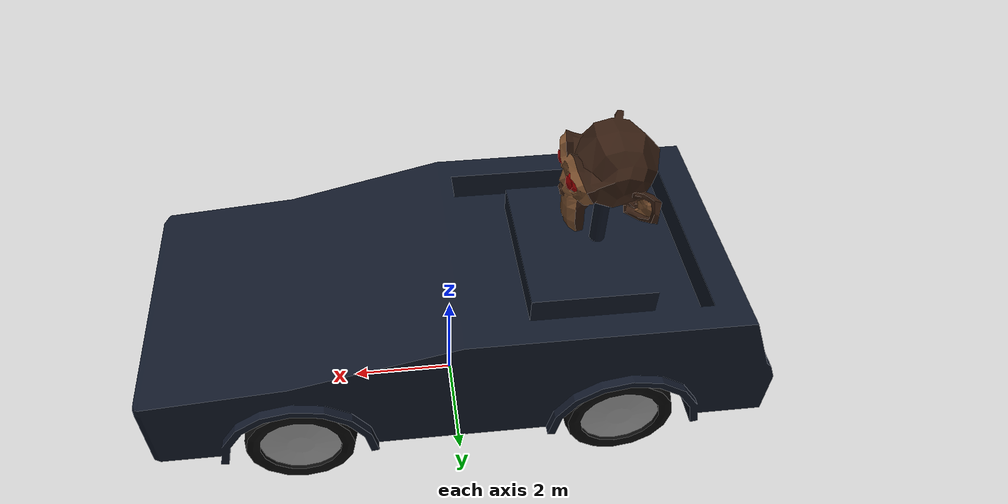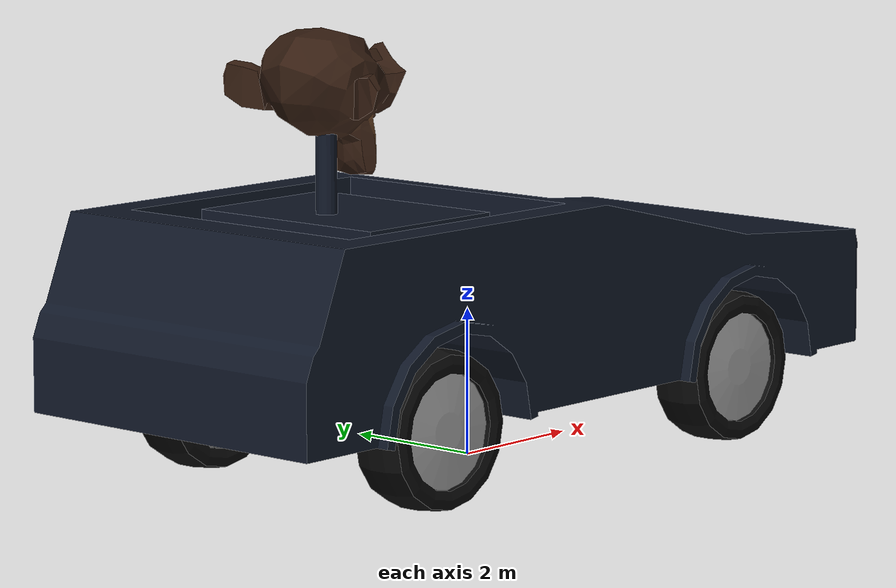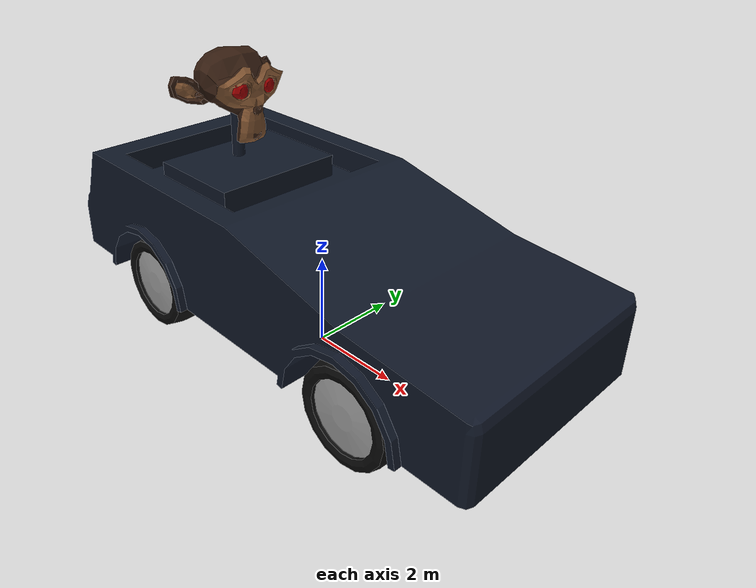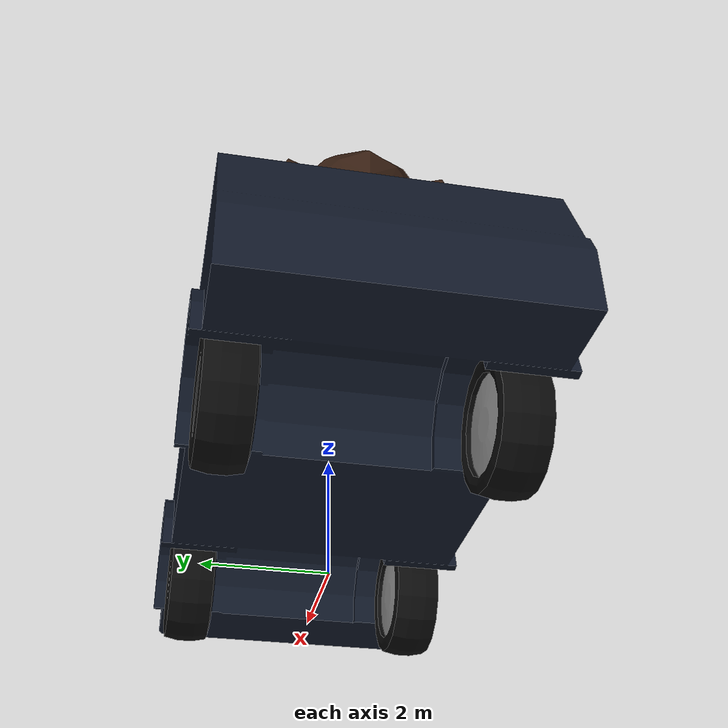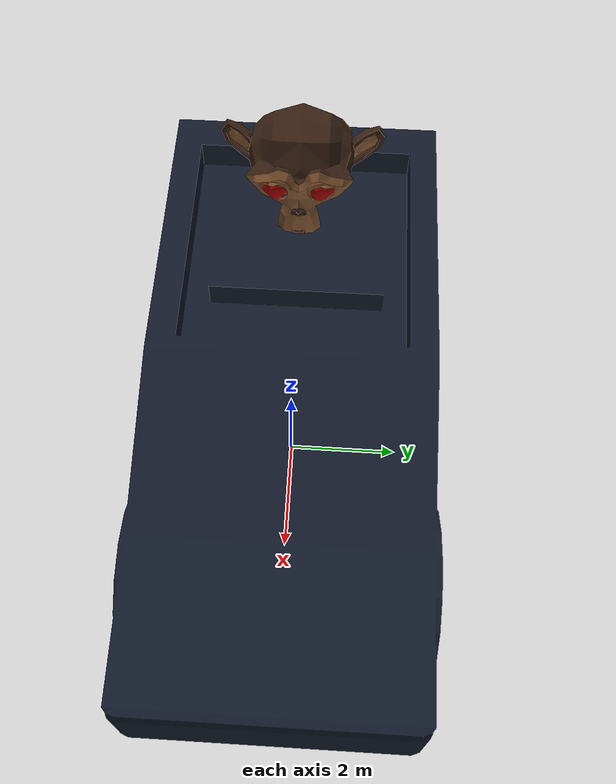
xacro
<?xml version="1.0"?>
<!-- this file was autogenerated by bender blender xacro exporter -->

<robot name="suzanne_bot" xmlns:xacro="http://ros.org/wiki/xacro">

<link name="base_footprint">
    <!-- visual -->

    <!-- collision -->

    <!-- inertial -->

        <inertial>
        <origin xyz="0 0 0" rpy="0 0 0" />
        <mass value="1.5"/>
        <inertia
            ixx="1.5" ixy="0.0" ixz="0.0"
            iyy="1.5" iyz="0.0"
            izz="1.5"/>
        </inertial>

</link>

<link name="base_link">
    <!-- visual -->

    <visual>

        <geometry>
            <mesh filename="package://suzanne_robot_description/meshes/chassi.dae"/>
        </geometry>
    </visual>

    <!-- collision -->

    <collision>

        <geometry>
            <mesh filename="package://suzanne_robot_description/meshes/chassi.dae"/>
        </geometry>
    </collision>

    <!-- inertial -->

        <inertial>
        <origin xyz="0 0 0" rpy="0 0 0" />
        <mass value="1000"/>
        <inertia
            ixx="1.5" ixy="0.0" ixz="0.0"
            iyy="1.5" iyz="0.0"
            izz="1.5"/>
        </inertial>

</link>

<joint name="base_footprint_base_link_joint" type="revolute">
    <parent link="base_footprint"/>
    <child link="base_link"/>
    <!-- The whole model points backwards in blender so i just rotate it here...-->
      <origin xyz="  0.0000   0.0000   1.0607" rpy="  0.0000  -0.0000   3.141592654" />

    <axis xyz="1 0 0"/>
    <limit effort="0" velocity="0" lower="0" upper="0" />
  </joint>

   <transmission name="base_footprint_base_link_trans">
      <type>transmission_interface/SimpleTransmission</type>
      <joint name="base_footprint_base_link_joint"/>
      <actuator name="base_footprint_base_link_motor">
          <hardwareInterface>PositionJointInterface</hardwareInterface>
         <mechanicalReduction>1</mechanicalReduction>
       </actuator>
  </transmission>

<link name="head_link">
    <!-- visual -->

    <visual>

        <geometry>
            <mesh filename="package://suzanne_robot_description/meshes/head.dae"/>
        </geometry>
    </visual>

    <!-- collision -->

    <collision>

        <geometry>
            <mesh filename="package://suzanne_robot_description/meshes/head.dae"/>
        </geometry>
    </collision>

    <!-- inertial -->

        <inertial>
        <origin xyz="0 0 0" rpy="0 0 0" />
        <mass value="10"/>
        <inertia
            ixx="1.5" ixy="0.0" ixz="0.0"
            iyy="1.5" iyz="0.0"
            izz="1.5"/>
        </inertial>

</link>

<joint name="base_link_head_link_joint" type="revolute">
    <parent link="base_link"/>
    <child link="head_link"/>

      <origin xyz="  2.7640   0.0000   3.9750" rpy="  0.0000  -0.0000   0.0000" />

    <axis xyz="1 0 0"/>
    <limit effort="0" velocity="0" lower="0" upper="0" />
  </joint>

   <transmission name="base_link_head_link_trans">
      <type>transmission_interface/SimpleTransmission</type>
      <joint name="base_link_head_link_joint"/>
      <actuator name="base_link_head_link_motor">
          <hardwareInterface>PositionJointInterface</hardwareInterface>
         <mechanicalReduction>1</mechanicalReduction>
       </actuator>
  </transmission>

<link name="Eye_left">
    <!-- visual -->

    <visual>

        <geometry>
            <mesh filename="package://suzanne_robot_description/meshes/eye.dae"/>
        </geometry>
    </visual>

    <!-- collision -->

    <collision>

        <geometry>
            <mesh filename="package://suzanne_robot_description/meshes/eye.dae"/>
        </geometry>
    </collision>

    <!-- inertial -->

        <inertial>
        <origin xyz="0 0 0" rpy="0 0 0" />
        <mass value="1.5"/>
        <inertia
            ixx="1.5" ixy="0.0" ixz="0.0"
            iyy="1.5" iyz="0.0"
            izz="1.5"/>
        </inertial>

</link>

<joint name="head_link_Eye_left_joint" type="revolute">
    <parent link="head_link"/>
    <child link="Eye_left"/>

      <origin xyz=" -0.7038  -0.3516   0.2422" rpy="  0.0000  -0.0000   0.0000" />

    <axis xyz="1 0 0"/>
    <limit effort="0" velocity="0" lower="0" upper="0" />
  </joint>

   <transmission name="head_link_Eye_left_trans">
      <type>transmission_interface/SimpleTransmission</type>
      <joint name="head_link_Eye_left_joint"/>
      <actuator name="head_link_Eye_left_motor">
          <hardwareInterface>PositionJointInterface</hardwareInterface>
         <mechanicalReduction>1</mechanicalReduction>
       </actuator>
  </transmission>

<link name="Eye_right">
    <!-- visual -->

    <visual>

        <geometry>
            <mesh filename="package://suzanne_robot_description/meshes/eye.dae"/>
        </geometry>
    </visual>

    <!-- collision -->

    <collision>

        <geometry>
            <mesh filename="package://suzanne_robot_description/meshes/eye.dae"/>
        </geometry>
    </collision>

    <!-- inertial -->

        <inertial>
        <origin xyz="0 0 0" rpy="3.14 0 0" />
        <mass value="1.5"/>
        <inertia
            ixx="1.5" ixy="0.0" ixz="0.0"
            iyy="1.5" iyz="0.0"
            izz="1.5"/>
        </inertial>

</link>

<joint name="head_link_Eye_right_joint" type="revolute">
    <parent link="head_link"/>
    <child link="Eye_right"/>

      <origin xyz=" -0.7038   0.3516   0.2422" rpy="  0.0000  -0.0000   0.0000" />

    <axis xyz="1 0 0"/>
    <limit effort="0" velocity="0" lower="0" upper="0" />
  </joint>

   <transmission name="head_link_Eye_right_trans">
      <type>transmission_interface/SimpleTransmission</type>
      <joint name="head_link_Eye_right_joint"/>
      <actuator name="head_link_Eye_right_motor">
          <hardwareInterface>PositionJointInterface</hardwareInterface>
         <mechanicalReduction>1</mechanicalReduction>
       </actuator>
  </transmission>

<link name="Left_Back_Wheel">
    <!-- visual -->

    <visual>

        <geometry>
            <mesh filename="package://suzanne_robot_description/meshes/wheel.dae"/>
        </geometry>
    </visual>

    <!-- collision -->

    <collision>

        <geometry>
            <mesh filename="package://suzanne_robot_description/meshes/wheel.dae"/>
        </geometry>
    </collision>

    <!-- inertial -->

        <inertial>
        <origin xyz="0 0 0" rpy="0 0 0" />
        <mass value="5"/>
        <inertia
            ixx="1.5" ixy="0.0" ixz="0.0"
            iyy="1.5" iyz="0.0"
            izz="1.5"/>
        </inertial>

</link>

<joint name="base_link_Left_Back_Wheel_joint" type="continuous">
    <parent link="base_link"/>
    <child link="Left_Back_Wheel"/>

      <origin xyz="  3.0000  -2.0000   0.0000" rpy="  0.0000  -0.0000   0.0000" />

    <axis xyz="0 1 0"/>
    <limit effort="100" velocity="100" lower="-3.14" upper="3.14" />
  </joint>

   <transmission name="base_link_Left_Back_Wheel_trans">
      <type>transmission_interface/SimpleTransmission</type>
      <joint name="base_link_Left_Back_Wheel_joint"/>
      <actuator name="base_link_Left_Back_Wheel_motor">
          <hardwareInterface>PositionJointInterface</hardwareInterface>
         <mechanicalReduction>1</mechanicalReduction>
       </actuator>
  </transmission>

<link name="Left_Front_Wheel">
    <!-- visual -->

    <visual>

        <geometry>
            <mesh filename="package://suzanne_robot_description/meshes/wheel.dae"/>
        </geometry>
    </visual>

    <!-- collision -->

    <collision>

        <geometry>
            <mesh filename="package://suzanne_robot_description/meshes/wheel.dae"/>
        </geometry>
    </collision>
        <inertial>
        <origin xyz="0 0 0" rpy="0 0 0" />
        <mass value="5"/>
        <inertia
            ixx="1.5" ixy="0.0" ixz="0.0"
            iyy="1.5" iyz="0.0"
            izz="1.5"/>
        </inertial>

</link>

<joint name="base_link_Left_Front_Wheel_joint" type="continuous">
    <parent link="base_link"/>
    <child link="Left_Front_Wheel"/>

      <origin xyz=" -3.0000  -2.0000   0.0000" rpy="  0.0000  -0.0000   0.0000" />

    <axis xyz="0 1 0"/>
    <limit effort="100" velocity="100" lower="-3.14" upper="3.14" />
  </joint>

   <transmission name="base_link_Left_Front_Wheel_trans">
      <type>transmission_interface/SimpleTransmission</type>
      <joint name="base_link_Left_Front_Wheel_joint"/>
      <actuator name="base_link_Left_Front_Wheel_motor">
          <hardwareInterface>PositionJointInterface</hardwareInterface>
         <mechanicalReduction>1</mechanicalReduction>
       </actuator>
  </transmission>

<link name="Right_Back_Wheel">
    <!-- visual -->

    <visual>

        <geometry>
            <mesh filename="package://suzanne_robot_description/meshes/wheel.dae"/>
        </geometry>
    </visual>

    <!-- collision -->

    <collision>

        <geometry>
            <mesh filename="package://suzanne_robot_description/meshes/wheel.dae"/>
        </geometry>
    </collision>

    <!-- inertial -->

        <inertial>
        <origin xyz="0 0 0" rpy="0 0 0" />
        <mass value="5"/>
        <inertia
            ixx="1.5" ixy="0.0" ixz="0.0"
            iyy="1.5" iyz="0.0"
            izz="1.5"/>
        </inertial>

</link>

<joint name="base_link_Right_Back_Wheel_joint" type="continuous">
    <parent link="base_link"/>
    <child link="Right_Back_Wheel"/>

      <origin xyz="  3.0000   2.0000   0.0000" rpy="  0.0000  -0.0000   0.0000" />

    <axis xyz="0 1 0"/>
    <limit effort="100" velocity="100" lower="-3.14" upper="3.14" />
  </joint>

   <transmission name="base_link_Right_Back_Wheel_trans">
      <type>transmission_interface/SimpleTransmission</type>
      <joint name="base_link_Right_Back_Wheel_joint"/>
      <actuator name="base_link_Right_Back_Wheel_motor">
          <hardwareInterface>PositionJointInterface</hardwareInterface>
         <mechanicalReduction>1</mechanicalReduction>
       </actuator>
  </transmission>

<link name="Right_Front_Wheel">
    <!-- visual -->

    <visual>

        <geometry>
            <mesh filename="package://suzanne_robot_description/meshes/wheel.dae"/>
        </geometry>
    </visual>

    <!-- collision -->

    <collision>

        <geometry>
            <mesh filename="package://suzanne_robot_description/meshes/wheel.dae"/>
        </geometry>
    </collision>

    <!-- inertial -->

        <inertial>
        <origin xyz="0 0 0" rpy="0 0 0" />
        <mass value="5"/>
        <inertia
            ixx="1.5" ixy="0.0" ixz="0.0"
            iyy="1.5" iyz="0.0"
            izz="1.5"/>
        </inertial>
</link>

<joint name="base_link_Right_Front_Wheel_joint" type="continuous">
    <parent link="base_link"/>
    <child link="Right_Front_Wheel"/>

      <origin xyz=" -3.0000   2.0000   0.0000" rpy="  0.0000  -0.0000   0.0000" />

    <axis xyz="0 1 0"/>
    <limit effort="100" velocity="100" lower="-3.14" upper="3.14" />
  </joint>

   <transmission name="base_link_Right_Front_Wheel_trans">
      <type>transmission_interface/SimpleTransmission</type>
      <joint name="base_link_Right_Front_Wheel_joint"/>
      <actuator name="base_link_Right_Front_Wheel_motor">
          <hardwareInterface>PositionJointInterface</hardwareInterface>
         <mechanicalReduction>1</mechanicalReduction>
       </actuator>
  </transmission>

  <gazebo>
    <plugin name="object_controller" filename="libgazebo_ros_planar_move.so">
      <robotNamespace>/$(arg prefix)</robotNamespace>
      <commandTopic>cmd_vel</commandTopic>
      <odometryTopic>odom</odometryTopic>
      <odometryFrame>odom</odometryFrame>
      <odometryRate>20.0</odometryRate>
      <robotBaseFrame>/$(arg prefix)/base_footprint</robotBaseFrame><!-- this line could be removed but only if the base link stays the same-->
    </plugin>
  </gazebo>

    <gazebo>
        <plugin name="suz_ros_control" filename="libgazebo_ros_control.so">
            <robotParam>$(arg prefix)/robot_description</robotParam>
            <robotNamespace>/$(arg prefix)</robotNamespace>
            <controlPeriod>0.001</controlPeriod>
        </plugin>
    </gazebo>

</robot>
